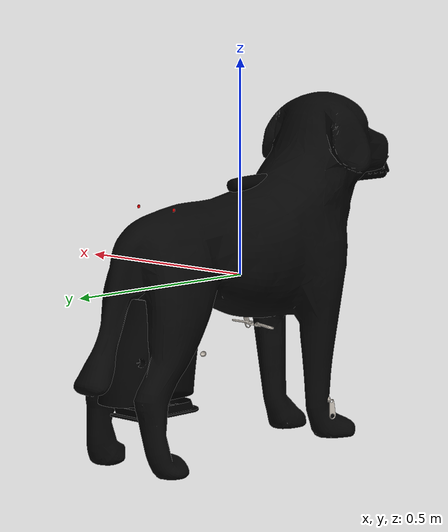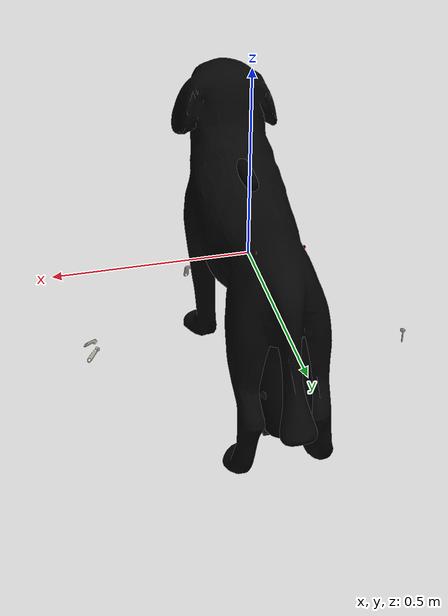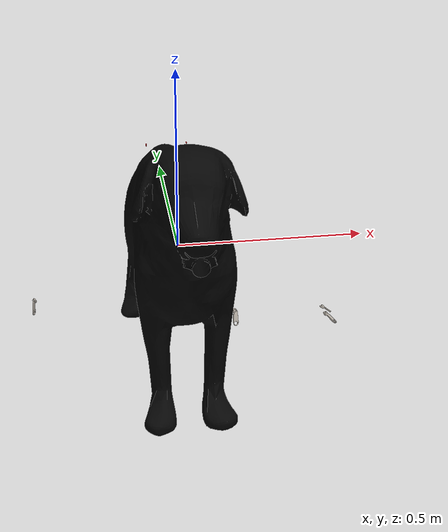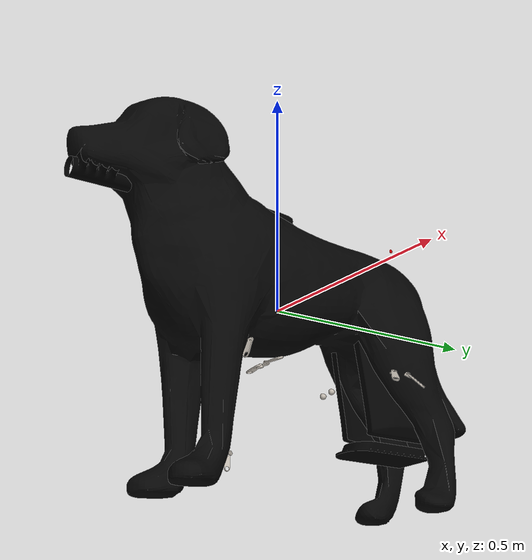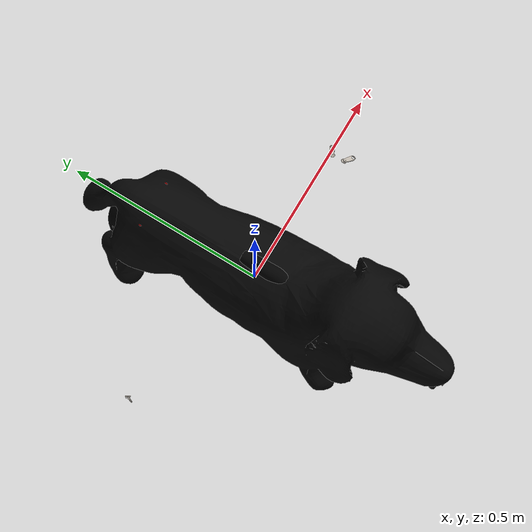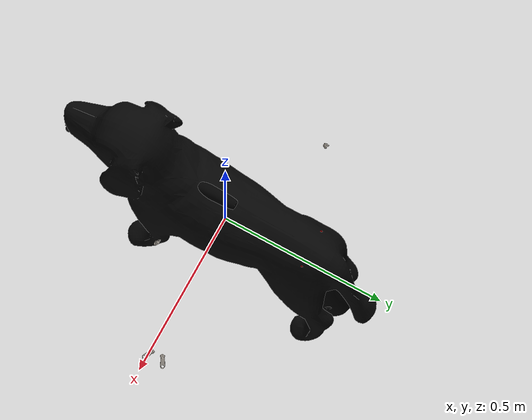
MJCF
<mujoco model="desert_eagle_gun">
  <asset>
  <texture file="visual/ceramic.png" name="tex-desert_eagle_gun" type="2d" />
  <material name="desert_eagle_gun" reflectance="0.5" texrepeat="1 1" texture="tex-desert_eagle_gun" texuniform="false" />
  <mesh file="visual/model_normalized_0.obj" name="model_normalized_0_vis" scale="1.0 1.0 1.0" /><mesh file="visual/model_normalized_1.obj" name="model_normalized_1_vis" scale="1.0 1.0 1.0" /><mesh file="visual/model_normalized_2.obj" name="model_normalized_2_vis" scale="1.0 1.0 1.0" /><mesh file="visual/model_normalized_3.obj" name="model_normalized_3_vis" scale="1.0 1.0 1.0" /><mesh file="visual/model_normalized_4.obj" name="model_normalized_4_vis" scale="1.0 1.0 1.0" /><mesh file="visual/model_normalized_5.obj" name="model_normalized_5_vis" scale="1.0 1.0 1.0" /><mesh file="collision/model_normalized_collision_22.obj" name="model_normalized_collision_22._coll" scale="1.0 1.0 1.0" /><mesh file="collision/model_normalized_collision_23.obj" name="model_normalized_collision_23._coll" scale="1.0 1.0 1.0" /><mesh file="collision/model_normalized_collision_21.obj" name="model_normalized_collision_21._coll" scale="1.0 1.0 1.0" /><mesh file="collision/model_normalized_collision_20.obj" name="model_normalized_collision_20._coll" scale="1.0 1.0 1.0" /><mesh file="collision/model_normalized_collision_24.obj" name="model_normalized_collision_24._coll" scale="1.0 1.0 1.0" /><mesh file="collision/model_normalized_collision_30.obj" name="model_normalized_collision_30._coll" scale="1.0 1.0 1.0" /><mesh file="collision/model_normalized_collision_18.obj" name="model_normalized_collision_18._coll" scale="1.0 1.0 1.0" /><mesh file="collision/model_normalized_collision_19.obj" name="model_normalized_collision_19._coll" scale="1.0 1.0 1.0" /><mesh file="collision/model_normalized_collision_31.obj" name="model_normalized_collision_31._coll" scale="1.0 1.0 1.0" /><mesh file="collision/model_normalized_collision_25.obj" name="model_normalized_collision_25._coll" scale="1.0 1.0 1.0" /><mesh file="collision/model_normalized_collision_27.obj" name="model_normalized_collision_27._coll" scale="1.0 1.0 1.0" /><mesh file="collision/model_normalized_collision_26.obj" name="model_normalized_collision_26._coll" scale="1.0 1.0 1.0" /><mesh file="collision/model_normalized_collision_9.obj" name="model_normalized_collision_9._coll" scale="1.0 1.0 1.0" /><mesh file="collision/model_normalized_collision_8.obj" name="model_normalized_collision_8._coll" scale="1.0 1.0 1.0" /><mesh file="collision/model_normalized_collision_6.obj" name="model_normalized_collision_6._coll" scale="1.0 1.0 1.0" /><mesh file="collision/model_normalized_collision_7.obj" name="model_normalized_collision_7._coll" scale="1.0 1.0 1.0" /><mesh file="collision/model_normalized_collision_5.obj" name="model_normalized_collision_5._coll" scale="1.0 1.0 1.0" /><mesh file="collision/model_normalized_collision_4.obj" name="model_normalized_collision_4._coll" scale="1.0 1.0 1.0" /><mesh file="collision/model_normalized_collision_0.obj" name="model_normalized_collision_0._coll" scale="1.0 1.0 1.0" /><mesh file="collision/model_normalized_collision_1.obj" name="model_normalized_collision_1._coll" scale="1.0 1.0 1.0" /><mesh file="collision/model_normalized_collision_3.obj" name="model_normalized_collision_3._coll" scale="1.0 1.0 1.0" /><mesh file="collision/model_normalized_collision_2.obj" name="model_normalized_collision_2._coll" scale="1.0 1.0 1.0" /><mesh file="collision/model_normalized_collision_17.obj" name="model_normalized_collision_17._coll" scale="1.0 1.0 1.0" /><mesh file="collision/model_normalized_collision_16.obj" name="model_normalized_collision_16._coll" scale="1.0 1.0 1.0" /><mesh file="collision/model_normalized_collision_28.obj" name="model_normalized_collision_28._coll" scale="1.0 1.0 1.0" /><mesh file="collision/model_normalized_collision_14.obj" name="model_normalized_collision_14._coll" scale="1.0 1.0 1.0" /><mesh file="collision/model_normalized_collision_15.obj" name="model_normalized_collision_15._coll" scale="1.0 1.0 1.0" /><mesh file="collision/model_normalized_collision_29.obj" name="model_normalized_collision_29._coll" scale="1.0 1.0 1.0" /><mesh file="collision/model_normalized_collision_11.obj" name="model_normalized_collision_11._coll" scale="1.0 1.0 1.0" /><mesh file="collision/model_normalized_collision_10.obj" name="model_normalized_collision_10._coll" scale="1.0 1.0 1.0" /><mesh file="collision/model_normalized_collision_12.obj" name="model_normalized_collision_12._coll" scale="1.0 1.0 1.0" /><mesh file="collision/model_normalized_collision_13.obj" name="model_normalized_collision_13._coll" scale="1.0 1.0 1.0" /><texture type="2d" name="material_0" file="visual/material_0.png" /><texture type="2d" name="material_2" file="visual/material_2.png" /><material name="material_0" texture="material_0" specular="0.4000000000000001" shininess="0.001" /><material name="material_1" specular="0.4000000000000001" shininess="0.001" rgba="0.00000000 0.00000000 0.00000000 1.0" /><material name="material_2" texture="material_2" specular="0.4000000000000001" shininess="0.001" /><material name="material_3" specular="0.4000000000000001" shininess="0.001" rgba="0.00392157 0.00392157 0.00392157 1.0" /><material name="material_4" specular="0.4000000000000001" shininess="0.001" rgba="0.80000000 0.00392157 0.00392157 1.0" /><material name="material_5" specular="0.4000000000000001" shininess="0.001" rgba="0.01960784 0.01960784 0.01960784 1.0" /></asset>
  <worldbody>
    <body>
      <body name="object">
      <geom solimp="0.998 0.998 0.001" solref="0.001 1" density="100" friction="0.95 0.3 0.1" type="mesh" mesh="model_normalized_0_vis" conaffinity="0" contype="0" group="1" material="material_5" /><geom solimp="0.998 0.998 0.001" solref="0.001 1" density="100" friction="0.95 0.3 0.1" type="mesh" mesh="model_normalized_1_vis" conaffinity="0" contype="0" group="1" material="material_4" /><geom solimp="0.998 0.998 0.001" solref="0.001 1" density="100" friction="0.95 0.3 0.1" type="mesh" mesh="model_normalized_2_vis" conaffinity="0" contype="0" group="1" material="material_3" /><geom solimp="0.998 0.998 0.001" solref="0.001 1" density="100" friction="0.95 0.3 0.1" type="mesh" mesh="model_normalized_3_vis" conaffinity="0" contype="0" group="1" material="material_2" /><geom solimp="0.998 0.998 0.001" solref="0.001 1" density="100" friction="0.95 0.3 0.1" type="mesh" mesh="model_normalized_4_vis" conaffinity="0" contype="0" group="1" material="material_1" /><geom solimp="0.998 0.998 0.001" solref="0.001 1" density="100" friction="0.95 0.3 0.1" type="mesh" mesh="model_normalized_5_vis" conaffinity="0" contype="0" group="1" material="material_0" /><geom solimp="0.998 0.998 0.001" solref="0.001 1" density="100" friction="0.95 0.3 0.1" type="mesh" mesh="model_normalized_collision_22._coll" group="0" rgba="0.8 0.8 0.8 0.0" /><geom solimp="0.998 0.998 0.001" solref="0.001 1" density="100" friction="0.95 0.3 0.1" type="mesh" mesh="model_normalized_collision_23._coll" group="0" rgba="0.8 0.8 0.8 0.0" /><geom solimp="0.998 0.998 0.001" solref="0.001 1" density="100" friction="0.95 0.3 0.1" type="mesh" mesh="model_normalized_collision_21._coll" group="0" rgba="0.8 0.8 0.8 0.0" /><geom solimp="0.998 0.998 0.001" solref="0.001 1" density="100" friction="0.95 0.3 0.1" type="mesh" mesh="model_normalized_collision_20._coll" group="0" rgba="0.8 0.8 0.8 0.0" /><geom solimp="0.998 0.998 0.001" solref="0.001 1" density="100" friction="0.95 0.3 0.1" type="mesh" mesh="model_normalized_collision_24._coll" group="0" rgba="0.8 0.8 0.8 0.0" /><geom solimp="0.998 0.998 0.001" solref="0.001 1" density="100" friction="0.95 0.3 0.1" type="mesh" mesh="model_normalized_collision_30._coll" group="0" rgba="0.8 0.8 0.8 0.0" /><geom solimp="0.998 0.998 0.001" solref="0.001 1" density="100" friction="0.95 0.3 0.1" type="mesh" mesh="model_normalized_collision_18._coll" group="0" rgba="0.8 0.8 0.8 0.0" /><geom solimp="0.998 0.998 0.001" solref="0.001 1" density="100" friction="0.95 0.3 0.1" type="mesh" mesh="model_normalized_collision_19._coll" group="0" rgba="0.8 0.8 0.8 0.0" /><geom solimp="0.998 0.998 0.001" solref="0.001 1" density="100" friction="0.95 0.3 0.1" type="mesh" mesh="model_normalized_collision_31._coll" group="0" rgba="0.8 0.8 0.8 0.0" /><geom solimp="0.998 0.998 0.001" solref="0.001 1" density="100" friction="0.95 0.3 0.1" type="mesh" mesh="model_normalized_collision_25._coll" group="0" rgba="0.8 0.8 0.8 0.0" /><geom solimp="0.998 0.998 0.001" solref="0.001 1" density="100" friction="0.95 0.3 0.1" type="mesh" mesh="model_normalized_collision_27._coll" group="0" rgba="0.8 0.8 0.8 0.0" /><geom solimp="0.998 0.998 0.001" solref="0.001 1" density="100" friction="0.95 0.3 0.1" type="mesh" mesh="model_normalized_collision_26._coll" group="0" rgba="0.8 0.8 0.8 0.0" /><geom solimp="0.998 0.998 0.001" solref="0.001 1" density="100" friction="0.95 0.3 0.1" type="mesh" mesh="model_normalized_collision_9._coll" group="0" rgba="0.8 0.8 0.8 0.0" /><geom solimp="0.998 0.998 0.001" solref="0.001 1" density="100" friction="0.95 0.3 0.1" type="mesh" mesh="model_normalized_collision_8._coll" group="0" rgba="0.8 0.8 0.8 0.0" /><geom solimp="0.998 0.998 0.001" solref="0.001 1" density="100" friction="0.95 0.3 0.1" type="mesh" mesh="model_normalized_collision_6._coll" group="0" rgba="0.8 0.8 0.8 0.0" /><geom solimp="0.998 0.998 0.001" solref="0.001 1" density="100" friction="0.95 0.3 0.1" type="mesh" mesh="model_normalized_collision_7._coll" group="0" rgba="0.8 0.8 0.8 0.0" /><geom solimp="0.998 0.998 0.001" solref="0.001 1" density="100" friction="0.95 0.3 0.1" type="mesh" mesh="model_normalized_collision_5._coll" group="0" rgba="0.8 0.8 0.8 0.0" /><geom solimp="0.998 0.998 0.001" solref="0.001 1" density="100" friction="0.95 0.3 0.1" type="mesh" mesh="model_normalized_collision_4._coll" group="0" rgba="0.8 0.8 0.8 0.0" /><geom solimp="0.998 0.998 0.001" solref="0.001 1" density="100" friction="0.95 0.3 0.1" type="mesh" mesh="model_normalized_collision_0._coll" group="0" rgba="0.8 0.8 0.8 0.0" /><geom solimp="0.998 0.998 0.001" solref="0.001 1" density="100" friction="0.95 0.3 0.1" type="mesh" mesh="model_normalized_collision_1._coll" group="0" rgba="0.8 0.8 0.8 0.0" /><geom solimp="0.998 0.998 0.001" solref="0.001 1" density="100" friction="0.95 0.3 0.1" type="mesh" mesh="model_normalized_collision_3._coll" group="0" rgba="0.8 0.8 0.8 0.0" /><geom solimp="0.998 0.998 0.001" solref="0.001 1" density="100" friction="0.95 0.3 0.1" type="mesh" mesh="model_normalized_collision_2._coll" group="0" rgba="0.8 0.8 0.8 0.0" /><geom solimp="0.998 0.998 0.001" solref="0.001 1" density="100" friction="0.95 0.3 0.1" type="mesh" mesh="model_normalized_collision_17._coll" group="0" rgba="0.8 0.8 0.8 0.0" /><geom solimp="0.998 0.998 0.001" solref="0.001 1" density="100" friction="0.95 0.3 0.1" type="mesh" mesh="model_normalized_collision_16._coll" group="0" rgba="0.8 0.8 0.8 0.0" /><geom solimp="0.998 0.998 0.001" solref="0.001 1" density="100" friction="0.95 0.3 0.1" type="mesh" mesh="model_normalized_collision_28._coll" group="0" rgba="0.8 0.8 0.8 0.0" /><geom solimp="0.998 0.998 0.001" solref="0.001 1" density="100" friction="0.95 0.3 0.1" type="mesh" mesh="model_normalized_collision_14._coll" group="0" rgba="0.8 0.8 0.8 0.0" /><geom solimp="0.998 0.998 0.001" solref="0.001 1" density="100" friction="0.95 0.3 0.1" type="mesh" mesh="model_normalized_collision_15._coll" group="0" rgba="0.8 0.8 0.8 0.0" /><geom solimp="0.998 0.998 0.001" solref="0.001 1" density="100" friction="0.95 0.3 0.1" type="mesh" mesh="model_normalized_collision_29._coll" group="0" rgba="0.8 0.8 0.8 0.0" /><geom solimp="0.998 0.998 0.001" solref="0.001 1" density="100" friction="0.95 0.3 0.1" type="mesh" mesh="model_normalized_collision_11._coll" group="0" rgba="0.8 0.8 0.8 0.0" /><geom solimp="0.998 0.998 0.001" solref="0.001 1" density="100" friction="0.95 0.3 0.1" type="mesh" mesh="model_normalized_collision_10._coll" group="0" rgba="0.8 0.8 0.8 0.0" /><geom solimp="0.998 0.998 0.001" solref="0.001 1" density="100" friction="0.95 0.3 0.1" type="mesh" mesh="model_normalized_collision_12._coll" group="0" rgba="0.8 0.8 0.8 0.0" /><geom solimp="0.998 0.998 0.001" solref="0.001 1" density="100" friction="0.95 0.3 0.1" type="mesh" mesh="model_normalized_collision_13._coll" group="0" rgba="0.8 0.8 0.8 0.0" /></body>
      <site rgba="0 0 0 0" size="0.005" pos="-0.0026614384459812193 -8.10398004353341e-05 -0.2943759446032447" name="bottom_site" />
      <site rgba="0 0 0 0" size="0.005" pos="-0.0026614384459812193 -8.10398004353341e-05 0.2964373523234588" name="top_site" />
      <site rgba="0 0 0 0" size="0.005" pos="0.08823291492767452 0.5074124332009888 0.001030703860107035" name="horizontal_radius_site" />
    </body>
  </worldbody>
</mujoco>
